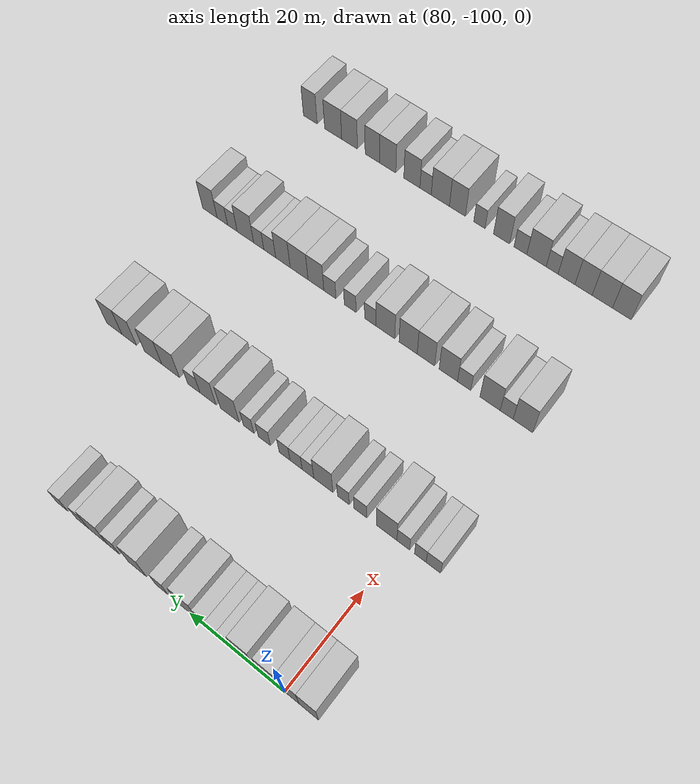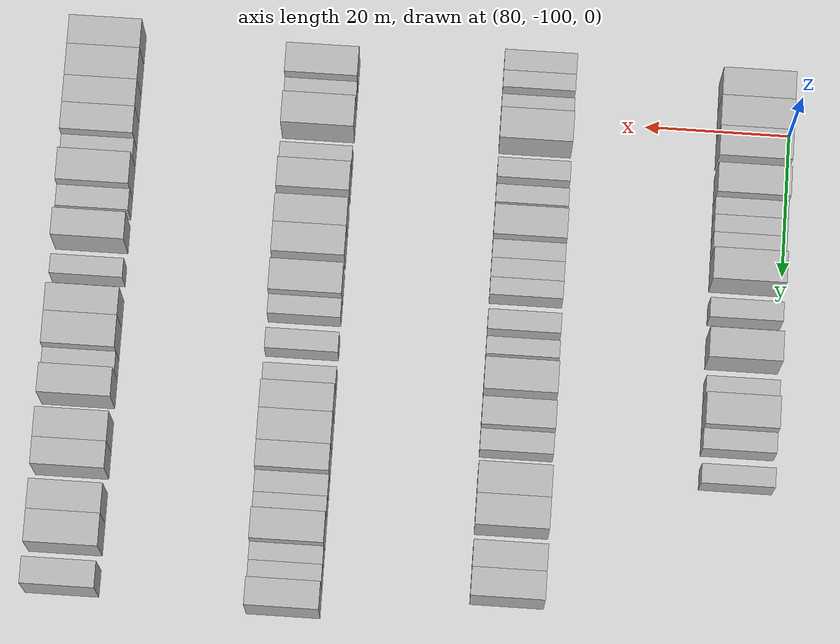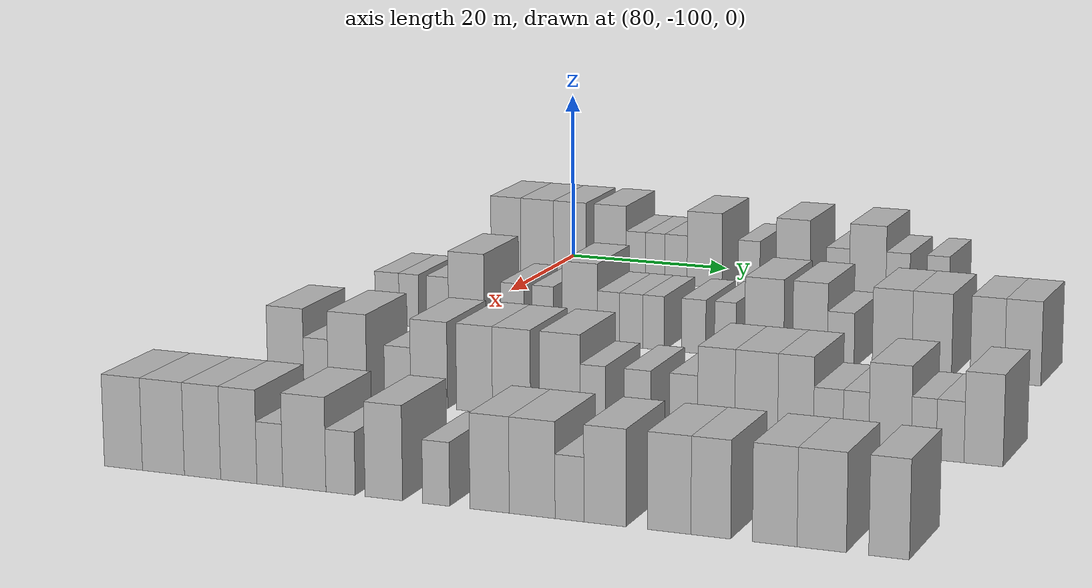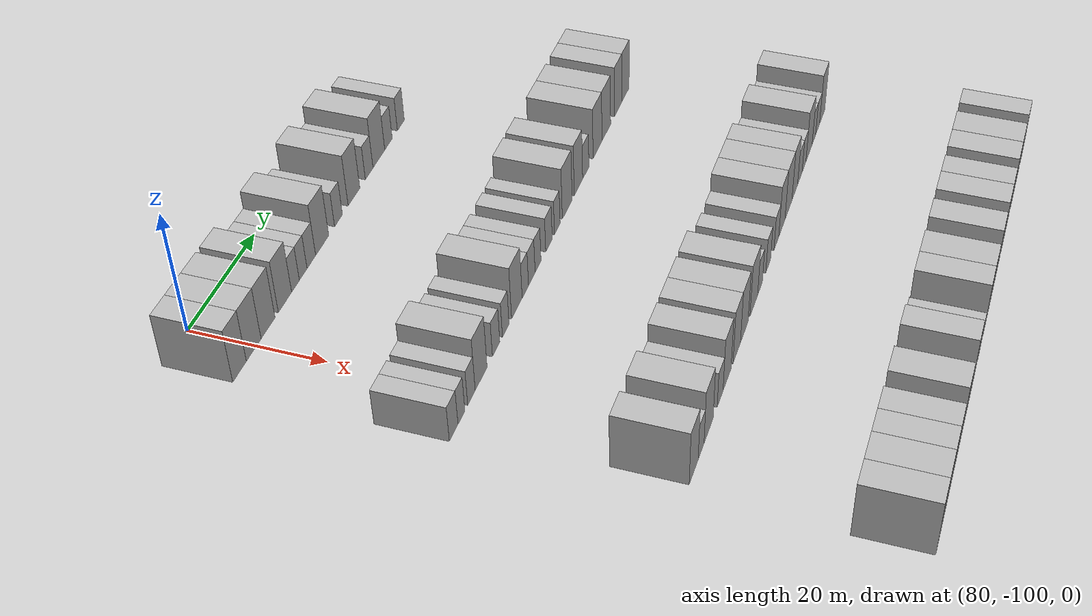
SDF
<sdf version="1.6">
 <world name="default">
  <model name="building_543">
   <static>1</static>
   <pose>85.0000 -104.8701 0 0.000000 0.000000 0.000000</pose>
   <link name="link">
    <pose>0 0 4.50 0 0 0</pose>
    <collision name="collision"><geometry><box><size>10.0000 3.8994 9.0000</size></box></geometry></collision>
    <visual name="visual">
     <cast_shadows>0</cast_shadows>
     <geometry><box><size>10.0000 3.8994 9.0000</size></box></geometry>
     <material>
      <script>
       <uri>model://HANNAS_wall/materials/scripts</uri>
       <uri>model://HANNAS_wall/materials/textures</uri>
       <name>vrc/HANNAS_wall</name>
      </script>
     </material>
    </visual>
   </link>
  </model>
  <model name="building_544">
   <static>1</static>
   <pose>85.0000 -100.7656 0 0.000000 0.000000 0.000000</pose>
   <link name="link">
    <pose>0 0 4.50 0 0 0</pose>
    <collision name="collision"><geometry><box><size>10.0000 4.3097 9.0000</size></box></geometry></collision>
    <visual name="visual">
     <cast_shadows>0</cast_shadows>
     <geometry><box><size>10.0000 4.3097 9.0000</size></box></geometry>
     <material>
      <script>
       <uri>model://HANNAS_wall/materials/scripts</uri>
       <uri>model://HANNAS_wall/materials/textures</uri>
       <name>vrc/HANNAS_wall</name>
      </script>
     </material>
    </visual>
   </link>
  </model>
  <model name="building_545">
   <static>1</static>
   <pose>85.0000 -96.5099 0 0.000000 0.000000 0.000000</pose>
   <link name="link">
    <pose>0 0 4.50 0 0 0</pose>
    <collision name="collision"><geometry><box><size>10.0000 4.2018 9.0000</size></box></geometry></collision>
    <visual name="visual">
     <cast_shadows>0</cast_shadows>
     <geometry><box><size>10.0000 4.2018 9.0000</size></box></geometry>
     <material>
      <script>
       <uri>model://HANNAS_wall/materials/scripts</uri>
       <uri>model://HANNAS_wall/materials/textures</uri>
       <name>vrc/HANNAS_wall</name>
      </script>
     </material>
    </visual>
   </link>
  </model>
  <model name="building_546">
   <static>1</static>
   <pose>85.0000 -91.3416 0 0.000000 0.000000 0.000000</pose>
   <link name="link">
    <pose>0 0 4.50 0 0 0</pose>
    <collision name="collision"><geometry><box><size>10.0000 4.1349 9.0000</size></box></geometry></collision>
    <visual name="visual">
     <cast_shadows>0</cast_shadows>
     <geometry><box><size>10.0000 4.1349 9.0000</size></box></geometry>
     <material>
      <script>
       <uri>model://HANNAS_wall/materials/scripts</uri>
       <uri>model://HANNAS_wall/materials/textures</uri>
       <name>vrc/HANNAS_wall</name>
      </script>
     </material>
    </visual>
   </link>
  </model>
  <model name="building_547">
   <static>1</static>
   <pose>85.0000 -88.0497 0 0.000000 0.000000 0.000000</pose>
   <link name="link">
    <pose>0 0 3.00 0 0 0</pose>
    <collision name="collision"><geometry><box><size>10.0000 2.4489 6.0000</size></box></geometry></collision>
    <visual name="visual">
     <cast_shadows>0</cast_shadows>
     <geometry><box><size>10.0000 2.4489 6.0000</size></box></geometry>
     <material>
      <script>
       <uri>model://HANNAS_wall/materials/scripts</uri>
       <uri>model://HANNAS_wall/materials/textures</uri>
       <name>vrc/HANNAS_wall</name>
      </script>
     </material>
    </visual>
   </link>
  </model>
  <model name="building_548">
   <static>1</static>
   <pose>85.0000 -85.5867 0 0.000000 0.000000 0.000000</pose>
   <link name="link">
    <pose>0 0 3.00 0 0 0</pose>
    <collision name="collision"><geometry><box><size>10.0000 2.4769 6.0000</size></box></geometry></collision>
    <visual name="visual">
     <cast_shadows>0</cast_shadows>
     <geometry><box><size>10.0000 2.4769 6.0000</size></box></geometry>
     <material>
      <script>
       <uri>model://HANNAS_wall/materials/scripts</uri>
       <uri>model://HANNAS_wall/materials/textures</uri>
       <name>vrc/HANNAS_wall</name>
      </script>
     </material>
    </visual>
   </link>
  </model>
  <model name="building_549">
   <static>1</static>
   <pose>85.0000 -82.9449 0 0.000000 0.000000 0.000000</pose>
   <link name="link">
    <pose>0 0 3.00 0 0 0</pose>
    <collision name="collision"><geometry><box><size>10.0000 2.8067 6.0000</size></box></geometry></collision>
    <visual name="visual">
     <cast_shadows>0</cast_shadows>
     <geometry><box><size>10.0000 2.8067 6.0000</size></box></geometry>
     <material>
      <script>
       <uri>model://HANNAS_wall/materials/scripts</uri>
       <uri>model://HANNAS_wall/materials/textures</uri>
       <name>vrc/HANNAS_wall</name>
      </script>
     </material>
    </visual>
   </link>
  </model>
  <model name="building_550">
   <static>1</static>
   <pose>85.0000 -79.3580 0 0.000000 0.000000 0.000000</pose>
   <link name="link">
    <pose>0 0 4.50 0 0 0</pose>
    <collision name="collision"><geometry><box><size>10.0000 4.3673 9.0000</size></box></geometry></collision>
    <visual name="visual">
     <cast_shadows>0</cast_shadows>
     <geometry><box><size>10.0000 4.3673 9.0000</size></box></geometry>
     <material>
      <script>
       <uri>model://HANNAS_wall/materials/scripts</uri>
       <uri>model://HANNAS_wall/materials/textures</uri>
       <name>vrc/HANNAS_wall</name>
      </script>
     </material>
    </visual>
   </link>
  </model>
  <model name="building_551">
   <static>1</static>
   <pose>85.0000 -73.8249 0 0.000000 0.000000 0.000000</pose>
   <link name="link">
    <pose>0 0 3.00 0 0 0</pose>
    <collision name="collision"><geometry><box><size>10.0000 2.6988 6.0000</size></box></geometry></collision>
    <visual name="visual">
     <cast_shadows>0</cast_shadows>
     <geometry><box><size>10.0000 2.6988 6.0000</size></box></geometry>
     <material>
      <script>
       <uri>model://HANNAS_wall/materials/scripts</uri>
       <uri>model://HANNAS_wall/materials/textures</uri>
       <name>vrc/HANNAS_wall</name>
      </script>
     </material>
    </visual>
   </link>
  </model>
  <model name="building_552">
   <static>1</static>
   <pose>85.0000 -68.4029 0 0.000000 0.000000 0.000000</pose>
   <link name="link">
    <pose>0 0 4.50 0 0 0</pose>
    <collision name="collision"><geometry><box><size>10.0000 4.1453 9.0000</size></box></geometry></collision>
    <visual name="visual">
     <cast_shadows>0</cast_shadows>
     <geometry><box><size>10.0000 4.1453 9.0000</size></box></geometry>
     <material>
      <script>
       <uri>model://HANNAS_wall/materials/scripts</uri>
       <uri>model://HANNAS_wall/materials/textures</uri>
       <name>vrc/HANNAS_wall</name>
      </script>
     </material>
    </visual>
   </link>
  </model>
  <model name="building_553">
   <static>1</static>
   <pose>85.0000 -62.9288 0 0.000000 0.000000 0.000000</pose>
   <link name="link">
    <pose>0 0 3.00 0 0 0</pose>
    <collision name="collision"><geometry><box><size>10.0000 2.8029 6.0000</size></box></geometry></collision>
    <visual name="visual">
     <cast_shadows>0</cast_shadows>
     <geometry><box><size>10.0000 2.8029 6.0000</size></box></geometry>
     <material>
      <script>
       <uri>model://HANNAS_wall/materials/scripts</uri>
       <uri>model://HANNAS_wall/materials/textures</uri>
       <name>vrc/HANNAS_wall</name>
      </script>
     </material>
    </visual>
   </link>
  </model>
  <model name="building_554">
   <static>1</static>
   <pose>85.0000 -59.3223 0 0.000000 0.000000 0.000000</pose>
   <link name="link">
    <pose>0 0 4.50 0 0 0</pose>
    <collision name="collision"><geometry><box><size>10.0000 4.4101 9.0000</size></box></geometry></collision>
    <visual name="visual">
     <cast_shadows>0</cast_shadows>
     <geometry><box><size>10.0000 4.4101 9.0000</size></box></geometry>
     <material>
      <script>
       <uri>model://HANNAS_wall/materials/scripts</uri>
       <uri>model://HANNAS_wall/materials/textures</uri>
       <name>vrc/HANNAS_wall</name>
      </script>
     </material>
    </visual>
   </link>
  </model>
  <model name="building_555">
   <static>1</static>
   <pose>85.0000 -55.6918 0 0.000000 0.000000 0.000000</pose>
   <link name="link">
    <pose>0 0 3.00 0 0 0</pose>
    <collision name="collision"><geometry><box><size>10.0000 2.8509 6.0000</size></box></geometry></collision>
    <visual name="visual">
     <cast_shadows>0</cast_shadows>
     <geometry><box><size>10.0000 2.8509 6.0000</size></box></geometry>
     <material>
      <script>
       <uri>model://HANNAS_wall/materials/scripts</uri>
       <uri>model://HANNAS_wall/materials/textures</uri>
       <name>vrc/HANNAS_wall</name>
      </script>
     </material>
    </visual>
   </link>
  </model>
  <model name="building_556">
   <static>1</static>
   <pose>85.0000 -50.9193 0 0.000000 0.000000 0.000000</pose>
   <link name="link">
    <pose>0 0 3.00 0 0 0</pose>
    <collision name="collision"><geometry><box><size>10.0000 2.6942 6.0000</size></box></geometry></collision>
    <visual name="visual">
     <cast_shadows>0</cast_shadows>
     <geometry><box><size>10.0000 2.6942 6.0000</size></box></geometry>
     <material>
      <script>
       <uri>model://HANNAS_wall/materials/scripts</uri>
       <uri>model://HANNAS_wall/materials/textures</uri>
       <name>vrc/HANNAS_wall</name>
      </script>
     </material>
    </visual>
   </link>
  </model>
  <model name="building_758">
   <static>1</static>
   <pose>115.0000 -106.7484 0 0.000000 0.000000 0.000000</pose>
   <link name="link">
    <pose>0 0 3.00 0 0 0</pose>
    <collision name="collision"><geometry><box><size>10.0000 2.9590 6.0000</size></box></geometry></collision>
    <visual name="visual">
     <cast_shadows>0</cast_shadows>
     <geometry><box><size>10.0000 2.9590 6.0000</size></box></geometry>
     <material>
      <script>
       <uri>model://HANNAS_wall/materials/scripts</uri>
       <uri>model://HANNAS_wall/materials/textures</uri>
       <name>vrc/HANNAS_wall</name>
      </script>
     </material>
    </visual>
   </link>
  </model>
  <model name="building_759">
   <static>1</static>
   <pose>115.0000 -104.0685 0 0.000000 0.000000 0.000000</pose>
   <link name="link">
    <pose>0 0 3.00 0 0 0</pose>
    <collision name="collision"><geometry><box><size>10.0000 2.4007 6.0000</size></box></geometry></collision>
    <visual name="visual">
     <cast_shadows>0</cast_shadows>
     <geometry><box><size>10.0000 2.4007 6.0000</size></box></geometry>
     <material>
      <script>
       <uri>model://HANNAS_wall/materials/scripts</uri>
       <uri>model://HANNAS_wall/materials/textures</uri>
       <name>vrc/HANNAS_wall</name>
      </script>
     </material>
    </visual>
   </link>
  </model>
  <model name="building_760">
   <static>1</static>
   <pose>115.0000 -100.5392 0 0.000000 0.000000 0.000000</pose>
   <link name="link">
    <pose>0 0 3.00 0 0 0</pose>
    <collision name="collision"><geometry><box><size>10.0000 2.6580 6.0000</size></box></geometry></collision>
    <visual name="visual">
     <cast_shadows>0</cast_shadows>
     <geometry><box><size>10.0000 2.6580 6.0000</size></box></geometry>
     <material>
      <script>
       <uri>model://HANNAS_wall/materials/scripts</uri>
       <uri>model://HANNAS_wall/materials/textures</uri>
       <name>vrc/HANNAS_wall</name>
      </script>
     </material>
    </visual>
   </link>
  </model>
  <model name="building_761">
   <static>1</static>
   <pose>115.0000 -97.0466 0 0.000000 0.000000 0.000000</pose>
   <link name="link">
    <pose>0 0 4.50 0 0 0</pose>
    <collision name="collision"><geometry><box><size>10.0000 4.3271 9.0000</size></box></geometry></collision>
    <visual name="visual">
     <cast_shadows>0</cast_shadows>
     <geometry><box><size>10.0000 4.3271 9.0000</size></box></geometry>
     <material>
      <script>
       <uri>model://HANNAS_wall/materials/scripts</uri>
       <uri>model://HANNAS_wall/materials/textures</uri>
       <name>vrc/HANNAS_wall</name>
      </script>
     </material>
    </visual>
   </link>
  </model>
  <model name="building_762">
   <static>1</static>
   <pose>115.0000 -91.4941 0 0.000000 0.000000 0.000000</pose>
   <link name="link">
    <pose>0 0 3.00 0 0 0</pose>
    <collision name="collision"><geometry><box><size>10.0000 2.7779 6.0000</size></box></geometry></collision>
    <visual name="visual">
     <cast_shadows>0</cast_shadows>
     <geometry><box><size>10.0000 2.7779 6.0000</size></box></geometry>
     <material>
      <script>
       <uri>model://HANNAS_wall/materials/scripts</uri>
       <uri>model://HANNAS_wall/materials/textures</uri>
       <name>vrc/HANNAS_wall</name>
      </script>
     </material>
    </visual>
   </link>
  </model>
  <model name="building_763">
   <static>1</static>
   <pose>115.0000 -87.8286 0 0.000000 0.000000 0.000000</pose>
   <link name="link">
    <pose>0 0 3.00 0 0 0</pose>
    <collision name="collision"><geometry><box><size>10.0000 2.5532 6.0000</size></box></geometry></collision>
    <visual name="visual">
     <cast_shadows>0</cast_shadows>
     <geometry><box><size>10.0000 2.5532 6.0000</size></box></geometry>
     <material>
      <script>
       <uri>model://HANNAS_wall/materials/scripts</uri>
       <uri>model://HANNAS_wall/materials/textures</uri>
       <name>vrc/HANNAS_wall</name>
      </script>
     </material>
    </visual>
   </link>
  </model>
  <model name="building_764">
   <static>1</static>
   <pose>115.0000 -83.4546 0 0.000000 0.000000 0.000000</pose>
   <link name="link">
    <pose>0 0 4.50 0 0 0</pose>
    <collision name="collision"><geometry><box><size>10.0000 4.1949 9.0000</size></box></geometry></collision>
    <visual name="visual">
     <cast_shadows>0</cast_shadows>
     <geometry><box><size>10.0000 4.1949 9.0000</size></box></geometry>
     <material>
      <script>
       <uri>model://HANNAS_wall/materials/scripts</uri>
       <uri>model://HANNAS_wall/materials/textures</uri>
       <name>vrc/HANNAS_wall</name>
      </script>
     </material>
    </visual>
   </link>
  </model>
  <model name="building_765">
   <static>1</static>
   <pose>115.0000 -80.0646 0 0.000000 0.000000 0.000000</pose>
   <link name="link">
    <pose>0 0 3.00 0 0 0</pose>
    <collision name="collision"><geometry><box><size>10.0000 2.5852 6.0000</size></box></geometry></collision>
    <visual name="visual">
     <cast_shadows>0</cast_shadows>
     <geometry><box><size>10.0000 2.5852 6.0000</size></box></geometry>
     <material>
      <script>
       <uri>model://HANNAS_wall/materials/scripts</uri>
       <uri>model://HANNAS_wall/materials/textures</uri>
       <name>vrc/HANNAS_wall</name>
      </script>
     </material>
    </visual>
   </link>
  </model>
  <model name="building_766">
   <static>1</static>
   <pose>115.0000 -77.4137 0 0.000000 0.000000 0.000000</pose>
   <link name="link">
    <pose>0 0 3.00 0 0 0</pose>
    <collision name="collision"><geometry><box><size>10.0000 2.7165 6.0000</size></box></geometry></collision>
    <visual name="visual">
     <cast_shadows>0</cast_shadows>
     <geometry><box><size>10.0000 2.7165 6.0000</size></box></geometry>
     <material>
      <script>
       <uri>model://HANNAS_wall/materials/scripts</uri>
       <uri>model://HANNAS_wall/materials/textures</uri>
       <name>vrc/HANNAS_wall</name>
      </script>
     </material>
    </visual>
   </link>
  </model>
  <model name="building_767">
   <static>1</static>
   <pose>115.0000 -74.8242 0 0.000000 0.000000 0.000000</pose>
   <link name="link">
    <pose>0 0 3.00 0 0 0</pose>
    <collision name="collision"><geometry><box><size>10.0000 2.4624 6.0000</size></box></geometry></collision>
    <visual name="visual">
     <cast_shadows>0</cast_shadows>
     <geometry><box><size>10.0000 2.4624 6.0000</size></box></geometry>
     <material>
      <script>
       <uri>model://HANNAS_wall/materials/scripts</uri>
       <uri>model://HANNAS_wall/materials/textures</uri>
       <name>vrc/HANNAS_wall</name>
      </script>
     </material>
    </visual>
   </link>
  </model>
  <model name="building_768">
   <static>1</static>
   <pose>115.0000 -70.2018 0 0.000000 0.000000 0.000000</pose>
   <link name="link">
    <pose>0 0 3.00 0 0 0</pose>
    <collision name="collision"><geometry><box><size>10.0000 2.7823 6.0000</size></box></geometry></collision>
    <visual name="visual">
     <cast_shadows>0</cast_shadows>
     <geometry><box><size>10.0000 2.7823 6.0000</size></box></geometry>
     <material>
      <script>
       <uri>model://HANNAS_wall/materials/scripts</uri>
       <uri>model://HANNAS_wall/materials/textures</uri>
       <name>vrc/HANNAS_wall</name>
      </script>
     </material>
    </visual>
   </link>
  </model>
  <model name="building_769">
   <static>1</static>
   <pose>115.0000 -66.5893 0 0.000000 0.000000 0.000000</pose>
   <link name="link">
    <pose>0 0 3.00 0 0 0</pose>
    <collision name="collision"><geometry><box><size>10.0000 2.4428 6.0000</size></box></geometry></collision>
    <visual name="visual">
     <cast_shadows>0</cast_shadows>
     <geometry><box><size>10.0000 2.4428 6.0000</size></box></geometry>
     <material>
      <script>
       <uri>model://HANNAS_wall/materials/scripts</uri>
       <uri>model://HANNAS_wall/materials/textures</uri>
       <name>vrc/HANNAS_wall</name>
      </script>
     </material>
    </visual>
   </link>
  </model>
  <model name="building_770">
   <static>1</static>
   <pose>115.0000 -62.1662 0 0.000000 0.000000 0.000000</pose>
   <link name="link">
    <pose>0 0 4.50 0 0 0</pose>
    <collision name="collision"><geometry><box><size>10.0000 4.4035 9.0000</size></box></geometry></collision>
    <visual name="visual">
     <cast_shadows>0</cast_shadows>
     <geometry><box><size>10.0000 4.4035 9.0000</size></box></geometry>
     <material>
      <script>
       <uri>model://HANNAS_wall/materials/scripts</uri>
       <uri>model://HANNAS_wall/materials/textures</uri>
       <name>vrc/HANNAS_wall</name>
      </script>
     </material>
    </visual>
   </link>
  </model>
  <model name="building_771">
   <static>1</static>
   <pose>115.0000 -57.0259 0 0.000000 0.000000 0.000000</pose>
   <link name="link">
    <pose>0 0 4.50 0 0 0</pose>
    <collision name="collision"><geometry><box><size>10.0000 3.8770 9.0000</size></box></geometry></collision>
    <visual name="visual">
     <cast_shadows>0</cast_shadows>
     <geometry><box><size>10.0000 3.8770 9.0000</size></box></geometry>
     <material>
      <script>
       <uri>model://HANNAS_wall/materials/scripts</uri>
       <uri>model://HANNAS_wall/materials/textures</uri>
       <name>vrc/HANNAS_wall</name>
      </script>
     </material>
    </visual>
   </link>
  </model>
  <model name="building_772">
   <static>1</static>
   <pose>115.0000 -53.6048 0 0.000000 0.000000 0.000000</pose>
   <link name="link">
    <pose>0 0 3.00 0 0 0</pose>
    <collision name="collision"><geometry><box><size>10.0000 2.9653 6.0000</size></box></geometry></collision>
    <visual name="visual">
     <cast_shadows>0</cast_shadows>
     <geometry><box><size>10.0000 2.9653 6.0000</size></box></geometry>
     <material>
      <script>
       <uri>model://HANNAS_wall/materials/scripts</uri>
       <uri>model://HANNAS_wall/materials/textures</uri>
       <name>vrc/HANNAS_wall</name>
      </script>
     </material>
    </visual>
   </link>
  </model>
  <model name="building_773">
   <static>1</static>
   <pose>115.0000 -47.9509 0 0.000000 0.000000 0.000000</pose>
   <link name="link">
    <pose>0 0 4.50 0 0 0</pose>
    <collision name="collision"><geometry><box><size>10.0000 4.3425 9.0000</size></box></geometry></collision>
    <visual name="visual">
     <cast_shadows>0</cast_shadows>
     <geometry><box><size>10.0000 4.3425 9.0000</size></box></geometry>
     <material>
      <script>
       <uri>model://HANNAS_wall/materials/scripts</uri>
       <uri>model://HANNAS_wall/materials/textures</uri>
       <name>vrc/HANNAS_wall</name>
      </script>
     </material>
    </visual>
   </link>
  </model>
  <model name="building_774">
   <static>1</static>
   <pose>115.0000 -43.6194 0 0.000000 0.000000 0.000000</pose>
   <link name="link">
    <pose>0 0 4.50 0 0 0</pose>
    <collision name="collision"><geometry><box><size>10.0000 4.3204 9.0000</size></box></geometry></collision>
    <visual name="visual">
     <cast_shadows>0</cast_shadows>
     <geometry><box><size>10.0000 4.3204 9.0000</size></box></geometry>
     <material>
      <script>
       <uri>model://HANNAS_wall/materials/scripts</uri>
       <uri>model://HANNAS_wall/materials/textures</uri>
       <name>vrc/HANNAS_wall</name>
      </script>
     </material>
    </visual>
   </link>
  </model>
  <model name="building_775">
   <static>1</static>
   <pose>115.0000 -37.6234 0 0.000000 0.000000 0.000000</pose>
   <link name="link">
    <pose>0 0 4.50 0 0 0</pose>
    <collision name="collision"><geometry><box><size>10.0000 3.6717 9.0000</size></box></geometry></collision>
    <visual name="visual">
     <cast_shadows>0</cast_shadows>
     <geometry><box><size>10.0000 3.6717 9.0000</size></box></geometry>
     <material>
      <script>
       <uri>model://HANNAS_wall/materials/scripts</uri>
       <uri>model://HANNAS_wall/materials/textures</uri>
       <name>vrc/HANNAS_wall</name>
      </script>
     </material>
    </visual>
   </link>
  </model>
  <model name="building_776">
   <static>1</static>
   <pose>115.0000 -33.8435 0 0.000000 0.000000 0.000000</pose>
   <link name="link">
    <pose>0 0 4.50 0 0 0</pose>
    <collision name="collision"><geometry><box><size>10.0000 3.8881 9.0000</size></box></geometry></collision>
    <visual name="visual">
     <cast_shadows>0</cast_shadows>
     <geometry><box><size>10.0000 3.8881 9.0000</size></box></geometry>
     <material>
      <script>
       <uri>model://HANNAS_wall/materials/scripts</uri>
       <uri>model://HANNAS_wall/materials/textures</uri>
       <name>vrc/HANNAS_wall</name>
      </script>
     </material>
    </visual>
   </link>
  </model>
  <model name="building_980">
   <static>1</static>
   <pose>145.0000 -104.2856 0 0.000000 0.000000 0.000000</pose>
   <link name="link">
    <pose>0 0 4.50 0 0 0</pose>
    <collision name="collision"><geometry><box><size>10.0000 4.1459 9.0000</size></box></geometry></collision>
    <visual name="visual">
     <cast_shadows>0</cast_shadows>
     <geometry><box><size>10.0000 4.1459 9.0000</size></box></geometry>
     <material>
      <script>
       <uri>model://HANNAS_wall/materials/scripts</uri>
       <uri>model://HANNAS_wall/materials/textures</uri>
       <name>vrc/HANNAS_wall</name>
      </script>
     </material>
    </visual>
   </link>
  </model>
  <model name="building_981">
   <static>1</static>
   <pose>145.0000 -100.8281 0 0.000000 0.000000 0.000000</pose>
   <link name="link">
    <pose>0 0 3.00 0 0 0</pose>
    <collision name="collision"><geometry><box><size>10.0000 2.7692 6.0000</size></box></geometry></collision>
    <visual name="visual">
     <cast_shadows>0</cast_shadows>
     <geometry><box><size>10.0000 2.7692 6.0000</size></box></geometry>
     <material>
      <script>
       <uri>model://HANNAS_wall/materials/scripts</uri>
       <uri>model://HANNAS_wall/materials/textures</uri>
       <name>vrc/HANNAS_wall</name>
      </script>
     </material>
    </visual>
   </link>
  </model>
  <model name="building_982">
   <static>1</static>
   <pose>145.0000 -97.2544 0 0.000000 0.000000 0.000000</pose>
   <link name="link">
    <pose>0 0 4.50 0 0 0</pose>
    <collision name="collision"><geometry><box><size>10.0000 4.3783 9.0000</size></box></geometry></collision>
    <visual name="visual">
     <cast_shadows>0</cast_shadows>
     <geometry><box><size>10.0000 4.3783 9.0000</size></box></geometry>
     <material>
      <script>
       <uri>model://HANNAS_wall/materials/scripts</uri>
       <uri>model://HANNAS_wall/materials/textures</uri>
       <name>vrc/HANNAS_wall</name>
      </script>
     </material>
    </visual>
   </link>
  </model>
  <model name="building_983">
   <static>1</static>
   <pose>145.0000 -91.6058 0 0.000000 0.000000 0.000000</pose>
   <link name="link">
    <pose>0 0 3.00 0 0 0</pose>
    <collision name="collision"><geometry><box><size>10.0000 2.9190 6.0000</size></box></geometry></collision>
    <visual name="visual">
     <cast_shadows>0</cast_shadows>
     <geometry><box><size>10.0000 2.9190 6.0000</size></box></geometry>
     <material>
      <script>
       <uri>model://HANNAS_wall/materials/scripts</uri>
       <uri>model://HANNAS_wall/materials/textures</uri>
       <name>vrc/HANNAS_wall</name>
      </script>
     </material>
    </visual>
   </link>
  </model>
  <model name="building_984">
   <static>1</static>
   <pose>145.0000 -88.1043 0 0.000000 0.000000 0.000000</pose>
   <link name="link">
    <pose>0 0 4.50 0 0 0</pose>
    <collision name="collision"><geometry><box><size>10.0000 4.0840 9.0000</size></box></geometry></collision>
    <visual name="visual">
     <cast_shadows>0</cast_shadows>
     <geometry><box><size>10.0000 4.0840 9.0000</size></box></geometry>
     <material>
      <script>
       <uri>model://HANNAS_wall/materials/scripts</uri>
       <uri>model://HANNAS_wall/materials/textures</uri>
       <name>vrc/HANNAS_wall</name>
      </script>
     </material>
    </visual>
   </link>
  </model>
  <model name="building_985">
   <static>1</static>
   <pose>145.0000 -83.0952 0 0.000000 0.000000 0.000000</pose>
   <link name="link">
    <pose>0 0 4.50 0 0 0</pose>
    <collision name="collision"><geometry><box><size>10.0000 3.9342 9.0000</size></box></geometry></collision>
    <visual name="visual">
     <cast_shadows>0</cast_shadows>
     <geometry><box><size>10.0000 3.9342 9.0000</size></box></geometry>
     <material>
      <script>
       <uri>model://HANNAS_wall/materials/scripts</uri>
       <uri>model://HANNAS_wall/materials/textures</uri>
       <name>vrc/HANNAS_wall</name>
      </script>
     </material>
    </visual>
   </link>
  </model>
  <model name="building_986">
   <static>1</static>
   <pose>145.0000 -79.0582 0 0.000000 0.000000 0.000000</pose>
   <link name="link">
    <pose>0 0 4.50 0 0 0</pose>
    <collision name="collision"><geometry><box><size>10.0000 4.1399 9.0000</size></box></geometry></collision>
    <visual name="visual">
     <cast_shadows>0</cast_shadows>
     <geometry><box><size>10.0000 4.1399 9.0000</size></box></geometry>
     <material>
      <script>
       <uri>model://HANNAS_wall/materials/scripts</uri>
       <uri>model://HANNAS_wall/materials/textures</uri>
       <name>vrc/HANNAS_wall</name>
      </script>
     </material>
    </visual>
   </link>
  </model>
  <model name="building_987">
   <static>1</static>
   <pose>145.0000 -73.8247 0 0.000000 0.000000 0.000000</pose>
   <link name="link">
    <pose>0 0 4.50 0 0 0</pose>
    <collision name="collision"><geometry><box><size>10.0000 4.3270 9.0000</size></box></geometry></collision>
    <visual name="visual">
     <cast_shadows>0</cast_shadows>
     <geometry><box><size>10.0000 4.3270 9.0000</size></box></geometry>
     <material>
      <script>
       <uri>model://HANNAS_wall/materials/scripts</uri>
       <uri>model://HANNAS_wall/materials/textures</uri>
       <name>vrc/HANNAS_wall</name>
      </script>
     </material>
    </visual>
   </link>
  </model>
  <model name="building_988">
   <static>1</static>
   <pose>145.0000 -70.3190 0 0.000000 0.000000 0.000000</pose>
   <link name="link">
    <pose>0 0 3.00 0 0 0</pose>
    <collision name="collision"><geometry><box><size>10.0000 2.6844 6.0000</size></box></geometry></collision>
    <visual name="visual">
     <cast_shadows>0</cast_shadows>
     <geometry><box><size>10.0000 2.6844 6.0000</size></box></geometry>
     <material>
      <script>
       <uri>model://HANNAS_wall/materials/scripts</uri>
       <uri>model://HANNAS_wall/materials/textures</uri>
       <name>vrc/HANNAS_wall</name>
      </script>
     </material>
    </visual>
   </link>
  </model>
  <model name="building_989">
   <static>1</static>
   <pose>145.0000 -65.5748 0 0.000000 0.000000 0.000000</pose>
   <link name="link">
    <pose>0 0 3.00 0 0 0</pose>
    <collision name="collision"><geometry><box><size>10.0000 2.8040 6.0000</size></box></geometry></collision>
    <visual name="visual">
     <cast_shadows>0</cast_shadows>
     <geometry><box><size>10.0000 2.8040 6.0000</size></box></geometry>
     <material>
      <script>
       <uri>model://HANNAS_wall/materials/scripts</uri>
       <uri>model://HANNAS_wall/materials/textures</uri>
       <name>vrc/HANNAS_wall</name>
      </script>
     </material>
    </visual>
   </link>
  </model>
  <model name="building_990">
   <static>1</static>
   <pose>145.0000 -60.7160 0 0.000000 0.000000 0.000000</pose>
   <link name="link">
    <pose>0 0 3.00 0 0 0</pose>
    <collision name="collision"><geometry><box><size>10.0000 2.9134 6.0000</size></box></geometry></collision>
    <visual name="visual">
     <cast_shadows>0</cast_shadows>
     <geometry><box><size>10.0000 2.9134 6.0000</size></box></geometry>
     <material>
      <script>
       <uri>model://HANNAS_wall/materials/scripts</uri>
       <uri>model://HANNAS_wall/materials/textures</uri>
       <name>vrc/HANNAS_wall</name>
      </script>
     </material>
    </visual>
   </link>
  </model>
  <model name="building_991">
   <static>1</static>
   <pose>145.0000 -57.3332 0 0.000000 0.000000 0.000000</pose>
   <link name="link">
    <pose>0 0 4.50 0 0 0</pose>
    <collision name="collision"><geometry><box><size>10.0000 3.8522 9.0000</size></box></geometry></collision>
    <visual name="visual">
     <cast_shadows>0</cast_shadows>
     <geometry><box><size>10.0000 3.8522 9.0000</size></box></geometry>
     <material>
      <script>
       <uri>model://HANNAS_wall/materials/scripts</uri>
       <uri>model://HANNAS_wall/materials/textures</uri>
       <name>vrc/HANNAS_wall</name>
      </script>
     </material>
    </visual>
   </link>
  </model>
  <model name="building_992">
   <static>1</static>
   <pose>145.0000 -53.2144 0 0.000000 0.000000 0.000000</pose>
   <link name="link">
    <pose>0 0 4.50 0 0 0</pose>
    <collision name="collision"><geometry><box><size>10.0000 4.3854 9.0000</size></box></geometry></collision>
    <visual name="visual">
     <cast_shadows>0</cast_shadows>
     <geometry><box><size>10.0000 4.3854 9.0000</size></box></geometry>
     <material>
      <script>
       <uri>model://HANNAS_wall/materials/scripts</uri>
       <uri>model://HANNAS_wall/materials/textures</uri>
       <name>vrc/HANNAS_wall</name>
      </script>
     </material>
    </visual>
   </link>
  </model>
  <model name="building_993">
   <static>1</static>
   <pose>145.0000 -49.2050 0 0.000000 0.000000 0.000000</pose>
   <link name="link">
    <pose>0 0 4.50 0 0 0</pose>
    <collision name="collision"><geometry><box><size>10.0000 3.6335 9.0000</size></box></geometry></collision>
    <visual name="visual">
     <cast_shadows>0</cast_shadows>
     <geometry><box><size>10.0000 3.6335 9.0000</size></box></geometry>
     <material>
      <script>
       <uri>model://HANNAS_wall/materials/scripts</uri>
       <uri>model://HANNAS_wall/materials/textures</uri>
       <name>vrc/HANNAS_wall</name>
      </script>
     </material>
    </visual>
   </link>
  </model>
  <model name="building_994">
   <static>1</static>
   <pose>145.0000 -45.9005 0 0.000000 0.000000 0.000000</pose>
   <link name="link">
    <pose>0 0 3.00 0 0 0</pose>
    <collision name="collision"><geometry><box><size>10.0000 2.9755 6.0000</size></box></geometry></collision>
    <visual name="visual">
     <cast_shadows>0</cast_shadows>
     <geometry><box><size>10.0000 2.9755 6.0000</size></box></geometry>
     <material>
      <script>
       <uri>model://HANNAS_wall/materials/scripts</uri>
       <uri>model://HANNAS_wall/materials/textures</uri>
       <name>vrc/HANNAS_wall</name>
      </script>
     </material>
    </visual>
   </link>
  </model>
  <model name="building_995">
   <static>1</static>
   <pose>145.0000 -43.1252 0 0.000000 0.000000 0.000000</pose>
   <link name="link">
    <pose>0 0 3.00 0 0 0</pose>
    <collision name="collision"><geometry><box><size>10.0000 2.5751 6.0000</size></box></geometry></collision>
    <visual name="visual">
     <cast_shadows>0</cast_shadows>
     <geometry><box><size>10.0000 2.5751 6.0000</size></box></geometry>
     <material>
      <script>
       <uri>model://HANNAS_wall/materials/scripts</uri>
       <uri>model://HANNAS_wall/materials/textures</uri>
       <name>vrc/HANNAS_wall</name>
      </script>
     </material>
    </visual>
   </link>
  </model>
  <model name="building_996">
   <static>1</static>
   <pose>145.0000 -39.7320 0 0.000000 0.000000 0.000000</pose>
   <link name="link">
    <pose>0 0 4.50 0 0 0</pose>
    <collision name="collision"><geometry><box><size>10.0000 4.2112 9.0000</size></box></geometry></collision>
    <visual name="visual">
     <cast_shadows>0</cast_shadows>
     <geometry><box><size>10.0000 4.2112 9.0000</size></box></geometry>
     <material>
      <script>
       <uri>model://HANNAS_wall/materials/scripts</uri>
       <uri>model://HANNAS_wall/materials/textures</uri>
       <name>vrc/HANNAS_wall</name>
      </script>
     </material>
    </visual>
   </link>
  </model>
  <model name="building_997">
   <static>1</static>
   <pose>145.0000 -36.3880 0 0.000000 0.000000 0.000000</pose>
   <link name="link">
    <pose>0 0 3.00 0 0 0</pose>
    <collision name="collision"><geometry><box><size>10.0000 2.4767 6.0000</size></box></geometry></collision>
    <visual name="visual">
     <cast_shadows>0</cast_shadows>
     <geometry><box><size>10.0000 2.4767 6.0000</size></box></geometry>
     <material>
      <script>
       <uri>model://HANNAS_wall/materials/scripts</uri>
       <uri>model://HANNAS_wall/materials/textures</uri>
       <name>vrc/HANNAS_wall</name>
      </script>
     </material>
    </visual>
   </link>
  </model>
  <model name="building_998">
   <static>1</static>
   <pose>145.0000 -33.7911 0 0.000000 0.000000 0.000000</pose>
   <link name="link">
    <pose>0 0 3.00 0 0 0</pose>
    <collision name="collision"><geometry><box><size>10.0000 2.7171 6.0000</size></box></geometry></collision>
    <visual name="visual">
     <cast_shadows>0</cast_shadows>
     <geometry><box><size>10.0000 2.7171 6.0000</size></box></geometry>
     <material>
      <script>
       <uri>model://HANNAS_wall/materials/scripts</uri>
       <uri>model://HANNAS_wall/materials/textures</uri>
       <name>vrc/HANNAS_wall</name>
      </script>
     </material>
    </visual>
   </link>
  </model>
  <model name="building_999">
   <static>1</static>
   <pose>145.0000 -30.5303 0 0.000000 0.000000 0.000000</pose>
   <link name="link">
    <pose>0 0 4.50 0 0 0</pose>
    <collision name="collision"><geometry><box><size>10.0000 3.8045 9.0000</size></box></geometry></collision>
    <visual name="visual">
     <cast_shadows>0</cast_shadows>
     <geometry><box><size>10.0000 3.8045 9.0000</size></box></geometry>
     <material>
      <script>
       <uri>model://HANNAS_wall/materials/scripts</uri>
       <uri>model://HANNAS_wall/materials/textures</uri>
       <name>vrc/HANNAS_wall</name>
      </script>
     </material>
    </visual>
   </link>
  </model>
  <model name="building_1211">
   <static>1</static>
   <pose>175.0000 -106.2487 0 0.000000 0.000000 0.000000</pose>
   <link name="link">
    <pose>0 0 4.50 0 0 0</pose>
    <collision name="collision"><geometry><box><size>10.0000 4.0860 9.0000</size></box></geometry></collision>
    <visual name="visual">
     <cast_shadows>0</cast_shadows>
     <geometry><box><size>10.0000 4.0860 9.0000</size></box></geometry>
     <material>
      <script>
       <uri>model://HANNAS_wall/materials/scripts</uri>
       <uri>model://HANNAS_wall/materials/textures</uri>
       <name>vrc/HANNAS_wall</name>
      </script>
     </material>
    </visual>
   </link>
  </model>
  <model name="building_1212">
   <static>1</static>
   <pose>175.0000 -101.9737 0 0.000000 0.000000 0.000000</pose>
   <link name="link">
    <pose>0 0 4.50 0 0 0</pose>
    <collision name="collision"><geometry><box><size>10.0000 4.4640 9.0000</size></box></geometry></collision>
    <visual name="visual">
     <cast_shadows>0</cast_shadows>
     <geometry><box><size>10.0000 4.4640 9.0000</size></box></geometry>
     <material>
      <script>
       <uri>model://HANNAS_wall/materials/scripts</uri>
       <uri>model://HANNAS_wall/materials/textures</uri>
       <name>vrc/HANNAS_wall</name>
      </script>
     </material>
    </visual>
   </link>
  </model>
  <model name="building_1213">
   <static>1</static>
   <pose>175.0000 -97.8307 0 0.000000 0.000000 0.000000</pose>
   <link name="link">
    <pose>0 0 4.50 0 0 0</pose>
    <collision name="collision"><geometry><box><size>10.0000 3.8220 9.0000</size></box></geometry></collision>
    <visual name="visual">
     <cast_shadows>0</cast_shadows>
     <geometry><box><size>10.0000 3.8220 9.0000</size></box></geometry>
     <material>
      <script>
       <uri>model://HANNAS_wall/materials/scripts</uri>
       <uri>model://HANNAS_wall/materials/textures</uri>
       <name>vrc/HANNAS_wall</name>
      </script>
     </material>
    </visual>
   </link>
  </model>
  <model name="building_1214">
   <static>1</static>
   <pose>175.0000 -94.0240 0 0.000000 0.000000 0.000000</pose>
   <link name="link">
    <pose>0 0 4.50 0 0 0</pose>
    <collision name="collision"><geometry><box><size>10.0000 3.7914 9.0000</size></box></geometry></collision>
    <visual name="visual">
     <cast_shadows>0</cast_shadows>
     <geometry><box><size>10.0000 3.7914 9.0000</size></box></geometry>
     <material>
      <script>
       <uri>model://HANNAS_wall/materials/scripts</uri>
       <uri>model://HANNAS_wall/materials/textures</uri>
       <name>vrc/HANNAS_wall</name>
      </script>
     </material>
    </visual>
   </link>
  </model>
  <model name="building_1215">
   <static>1</static>
   <pose>175.0000 -90.7894 0 0.000000 0.000000 0.000000</pose>
   <link name="link">
    <pose>0 0 3.00 0 0 0</pose>
    <collision name="collision"><geometry><box><size>10.0000 2.6779 6.0000</size></box></geometry></collision>
    <visual name="visual">
     <cast_shadows>0</cast_shadows>
     <geometry><box><size>10.0000 2.6779 6.0000</size></box></geometry>
     <material>
      <script>
       <uri>model://HANNAS_wall/materials/scripts</uri>
       <uri>model://HANNAS_wall/materials/textures</uri>
       <name>vrc/HANNAS_wall</name>
      </script>
     </material>
    </visual>
   </link>
  </model>
  <model name="building_1216">
   <static>1</static>
   <pose>175.0000 -87.2320 0 0.000000 0.000000 0.000000</pose>
   <link name="link">
    <pose>0 0 4.50 0 0 0</pose>
    <collision name="collision"><geometry><box><size>10.0000 4.4369 9.0000</size></box></geometry></collision>
    <visual name="visual">
     <cast_shadows>0</cast_shadows>
     <geometry><box><size>10.0000 4.4369 9.0000</size></box></geometry>
     <material>
      <script>
       <uri>model://HANNAS_wall/materials/scripts</uri>
       <uri>model://HANNAS_wall/materials/textures</uri>
       <name>vrc/HANNAS_wall</name>
      </script>
     </material>
    </visual>
   </link>
  </model>
  <model name="building_1217">
   <static>1</static>
   <pose>175.0000 -83.5240 0 0.000000 0.000000 0.000000</pose>
   <link name="link">
    <pose>0 0 3.00 0 0 0</pose>
    <collision name="collision"><geometry><box><size>10.0000 2.9790 6.0000</size></box></geometry></collision>
    <visual name="visual">
     <cast_shadows>0</cast_shadows>
     <geometry><box><size>10.0000 2.9790 6.0000</size></box></geometry>
     <material>
      <script>
       <uri>model://HANNAS_wall/materials/scripts</uri>
       <uri>model://HANNAS_wall/materials/textures</uri>
       <name>vrc/HANNAS_wall</name>
      </script>
     </material>
    </visual>
   </link>
  </model>
  <model name="building_1218">
   <static>1</static>
   <pose>175.0000 -79.1440 0 0.000000 0.000000 0.000000</pose>
   <link name="link">
    <pose>0 0 4.50 0 0 0</pose>
    <collision name="collision"><geometry><box><size>10.0000 3.7809 9.0000</size></box></geometry></collision>
    <visual name="visual">
     <cast_shadows>0</cast_shadows>
     <geometry><box><size>10.0000 3.7809 9.0000</size></box></geometry>
     <material>
      <script>
       <uri>model://HANNAS_wall/materials/scripts</uri>
       <uri>model://HANNAS_wall/materials/textures</uri>
       <name>vrc/HANNAS_wall</name>
      </script>
     </material>
    </visual>
   </link>
  </model>
  <model name="building_1219">
   <static>1</static>
   <pose>175.0000 -73.9142 0 0.000000 0.000000 0.000000</pose>
   <link name="link">
    <pose>0 0 3.00 0 0 0</pose>
    <collision name="collision"><geometry><box><size>10.0000 2.6788 6.0000</size></box></geometry></collision>
    <visual name="visual">
     <cast_shadows>0</cast_shadows>
     <geometry><box><size>10.0000 2.6788 6.0000</size></box></geometry>
     <material>
      <script>
       <uri>model://HANNAS_wall/materials/scripts</uri>
       <uri>model://HANNAS_wall/materials/textures</uri>
       <name>vrc/HANNAS_wall</name>
      </script>
     </material>
    </visual>
   </link>
  </model>
  <model name="building_1220">
   <static>1</static>
   <pose>175.0000 -68.6484 0 0.000000 0.000000 0.000000</pose>
   <link name="link">
    <pose>0 0 4.50 0 0 0</pose>
    <collision name="collision"><geometry><box><size>10.0000 3.8529 9.0000</size></box></geometry></collision>
    <visual name="visual">
     <cast_shadows>0</cast_shadows>
     <geometry><box><size>10.0000 3.8529 9.0000</size></box></geometry>
     <material>
      <script>
       <uri>model://HANNAS_wall/materials/scripts</uri>
       <uri>model://HANNAS_wall/materials/textures</uri>
       <name>vrc/HANNAS_wall</name>
      </script>
     </material>
    </visual>
   </link>
  </model>
  <model name="building_1221">
   <static>1</static>
   <pose>175.0000 -64.4991 0 0.000000 0.000000 0.000000</pose>
   <link name="link">
    <pose>0 0 4.50 0 0 0</pose>
    <collision name="collision"><geometry><box><size>10.0000 4.4457 9.0000</size></box></geometry></collision>
    <visual name="visual">
     <cast_shadows>0</cast_shadows>
     <geometry><box><size>10.0000 4.4457 9.0000</size></box></geometry>
     <material>
      <script>
       <uri>model://HANNAS_wall/materials/scripts</uri>
       <uri>model://HANNAS_wall/materials/textures</uri>
       <name>vrc/HANNAS_wall</name>
      </script>
     </material>
    </visual>
   </link>
  </model>
  <model name="building_1222">
   <static>1</static>
   <pose>175.0000 -60.8927 0 0.000000 0.000000 0.000000</pose>
   <link name="link">
    <pose>0 0 3.00 0 0 0</pose>
    <collision name="collision"><geometry><box><size>10.0000 2.7672 6.0000</size></box></geometry></collision>
    <visual name="visual">
     <cast_shadows>0</cast_shadows>
     <geometry><box><size>10.0000 2.7672 6.0000</size></box></geometry>
     <material>
      <script>
       <uri>model://HANNAS_wall/materials/scripts</uri>
       <uri>model://HANNAS_wall/materials/textures</uri>
       <name>vrc/HANNAS_wall</name>
      </script>
     </material>
    </visual>
   </link>
  </model>
  <model name="building_1223">
   <static>1</static>
   <pose>175.0000 -57.5009 0 0.000000 0.000000 0.000000</pose>
   <link name="link">
    <pose>0 0 4.50 0 0 0</pose>
    <collision name="collision"><geometry><box><size>10.0000 4.0164 9.0000</size></box></geometry></collision>
    <visual name="visual">
     <cast_shadows>0</cast_shadows>
     <geometry><box><size>10.0000 4.0164 9.0000</size></box></geometry>
     <material>
      <script>
       <uri>model://HANNAS_wall/materials/scripts</uri>
       <uri>model://HANNAS_wall/materials/textures</uri>
       <name>vrc/HANNAS_wall</name>
      </script>
     </material>
    </visual>
   </link>
  </model>
  <model name="building_1224">
   <static>1</static>
   <pose>175.0000 -51.4421 0 0.000000 0.000000 0.000000</pose>
   <link name="link">
    <pose>0 0 4.50 0 0 0</pose>
    <collision name="collision"><geometry><box><size>10.0000 4.1013 9.0000</size></box></geometry></collision>
    <visual name="visual">
     <cast_shadows>0</cast_shadows>
     <geometry><box><size>10.0000 4.1013 9.0000</size></box></geometry>
     <material>
      <script>
       <uri>model://HANNAS_wall/materials/scripts</uri>
       <uri>model://HANNAS_wall/materials/textures</uri>
       <name>vrc/HANNAS_wall</name>
      </script>
     </material>
    </visual>
   </link>
  </model>
  <model name="building_1225">
   <static>1</static>
   <pose>175.0000 -47.5461 0 0.000000 0.000000 0.000000</pose>
   <link name="link">
    <pose>0 0 4.50 0 0 0</pose>
    <collision name="collision"><geometry><box><size>10.0000 3.6907 9.0000</size></box></geometry></collision>
    <visual name="visual">
     <cast_shadows>0</cast_shadows>
     <geometry><box><size>10.0000 3.6907 9.0000</size></box></geometry>
     <material>
      <script>
       <uri>model://HANNAS_wall/materials/scripts</uri>
       <uri>model://HANNAS_wall/materials/textures</uri>
       <name>vrc/HANNAS_wall</name>
      </script>
     </material>
    </visual>
   </link>
  </model>
  <model name="building_1226">
   <static>1</static>
   <pose>175.0000 -41.6581 0 0.000000 0.000000 0.000000</pose>
   <link name="link">
    <pose>0 0 4.50 0 0 0</pose>
    <collision name="collision"><geometry><box><size>10.0000 4.0852 9.0000</size></box></geometry></collision>
    <visual name="visual">
     <cast_shadows>0</cast_shadows>
     <geometry><box><size>10.0000 4.0852 9.0000</size></box></geometry>
     <material>
      <script>
       <uri>model://HANNAS_wall/materials/scripts</uri>
       <uri>model://HANNAS_wall/materials/textures</uri>
       <name>vrc/HANNAS_wall</name>
      </script>
     </material>
    </visual>
   </link>
  </model>
  <model name="building_1227">
   <static>1</static>
   <pose>175.0000 -37.3854 0 0.000000 0.000000 0.000000</pose>
   <link name="link">
    <pose>0 0 4.50 0 0 0</pose>
    <collision name="collision"><geometry><box><size>10.0000 4.4603 9.0000</size></box></geometry></collision>
    <visual name="visual">
     <cast_shadows>0</cast_shadows>
     <geometry><box><size>10.0000 4.4603 9.0000</size></box></geometry>
     <material>
      <script>
       <uri>model://HANNAS_wall/materials/scripts</uri>
       <uri>model://HANNAS_wall/materials/textures</uri>
       <name>vrc/HANNAS_wall</name>
      </script>
     </material>
    </visual>
   </link>
  </model>
  <model name="building_1228">
   <static>1</static>
   <pose>175.0000 -31.3418 0 0.000000 0.000000 0.000000</pose>
   <link name="link">
    <pose>0 0 4.50 0 0 0</pose>
    <collision name="collision"><geometry><box><size>10.0000 3.6268 9.0000</size></box></geometry></collision>
    <visual name="visual">
     <cast_shadows>0</cast_shadows>
     <geometry><box><size>10.0000 3.6268 9.0000</size></box></geometry>
     <material>
      <script>
       <uri>model://HANNAS_wall/materials/scripts</uri>
       <uri>model://HANNAS_wall/materials/textures</uri>
       <name>vrc/HANNAS_wall</name>
      </script>
     </material>
    </visual>
   </link>
  </model>
 </world>
</sdf>
